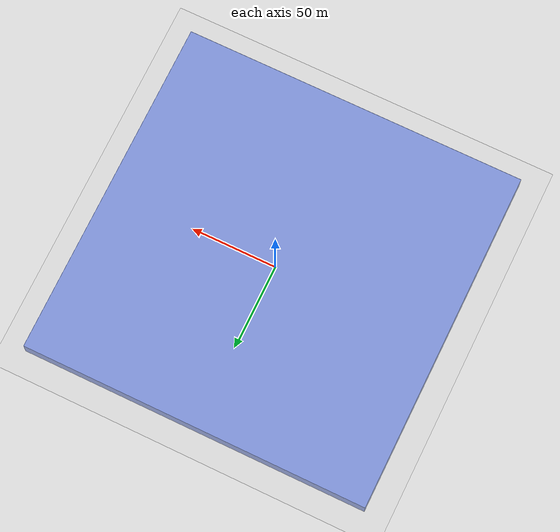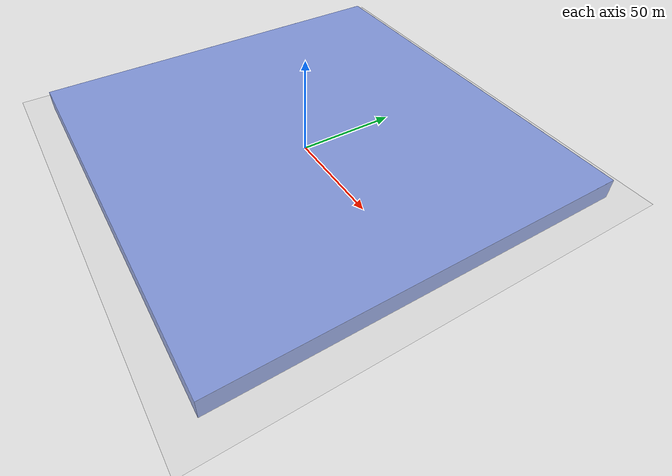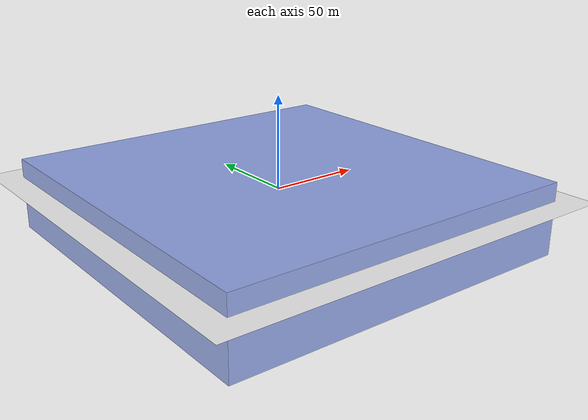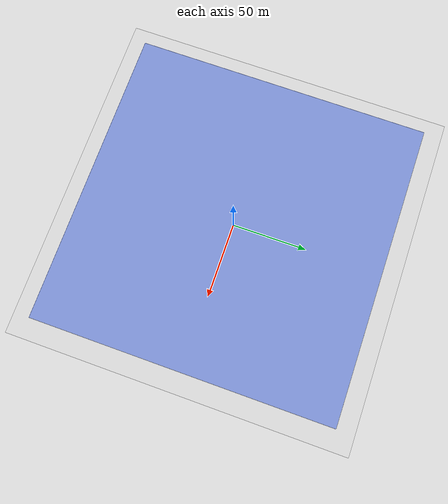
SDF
<sdf version="1.5">
 <world name="default">
  <gravity>0 0 -9.81</gravity>
  <physics name="ode" type="ode" default="true">
   <ode><solver><type>quick</type></solver></ode>
   <max_step_size>0.001</max_step_size>
   <real_time_update_rate>0.000000</real_time_update_rate>
  </physics>
  <physics name="ode_200iters" type="ode" default="true">
   <ode><solver><type>quick</type><iters>200</iters></solver></ode>
   <max_step_size>0.0001</max_step_size>
   <real_time_update_rate>0.000000</real_time_update_rate>
  </physics>
  <physics name="bullet_200iters" type="bullet" default="true">
   <bullet><solver><type>quick</type><iters>200</iters></solver></bullet>
   <max_step_size>0.0001</max_step_size>
   <real_time_update_rate>0.000000</real_time_update_rate>
  </physics>
  <scene><ambient>0.25 0.3 0.5 1</ambient><grid>true</grid></scene>
  <light type="directional" name="sun">
   <pose>0 0 100 0 0 0</pose>
   <diffuse>0.8 0.8 0.8 1</diffuse>
   <specular>0.2 0.2 0.2 1</specular>
   <attenuation>
    <range>1000</range>
    <constant>0.9</constant>
    <linear>0.01</linear>
    <quadratic>0.001</quadratic>
   </attenuation>
   <direction>-0.5 0.1 -0.9</direction>
  </light>
  <model name="ground_plane">
   <static>true</static>
   <link name="link">
    <collision name="collision">
     <geometry><plane><normal>0 0 1</normal><size>200 200</size></plane></geometry>
     <surface>
      <contact><collide_bitmask>0xffff</collide_bitmask></contact>
      <friction><ode><mu>100</mu><mu2>50</mu2></ode></friction>
     </surface>
    </collision>
    <visual name="visual">
     <cast_shadows>false</cast_shadows>
     <geometry><plane><normal>0 0 1</normal><size>200 200</size></plane></geometry>
     <material>
      <script><uri>file://media/materials/scripts/gazebo.material</uri><name>Gazebo/Grey</name></script>
     </material>
    </visual>
   </link>
  </model>
  <model name="ceiling_plane">
   <static>true</static>
   <pose>0 0 10 0 0 0</pose>
   <link name="link">
    <visual name="visual">
     <cast_shadows>false</cast_shadows>
     <geometry><box><size>200 200 .01</size></box></geometry>
     <material>
      <script>
       <uri>file://media/materials/scripts/gazebo.material</uri>
       <name>Gazebo/BlueTransparentOverlay</name>
      </script>
     </material>
    </visual>
    <visual name="visual_sideA">
     <pose>100.05 0 -20 0 0 0</pose>
     <cast_shadows>false</cast_shadows>
     <geometry><box><size>0.1 200 39.9</size></box></geometry>
     <material>
      <script><uri>file://media/materials/scripts/gazebo.material</uri><name>Gazebo/BlueTransparent</name></script>
     </material>
    </visual>
    <visual name="visual_sideB">
     <pose>-100.05 0 -20 0 0 0</pose>
     <cast_shadows>false</cast_shadows>
     <geometry><box><size>0.1 200 39.9</size></box></geometry>
     <material>
      <script><uri>file://media/materials/scripts/gazebo.material</uri><name>Gazebo/BlueTransparent</name></script>
     </material>
    </visual>
    <visual name="visual_sideC">
     <pose>0 100.05 -20 0 0 0</pose>
     <cast_shadows>false</cast_shadows>
     <geometry><box><size>200 0.1 39.9</size></box></geometry>
     <material>
      <script><uri>file://media/materials/scripts/gazebo.material</uri><name>Gazebo/BlueTransparent</name></script>
     </material>
    </visual>
    <visual name="visual_sideD">
     <pose>0 -100.05 -20 0 0 0</pose>
     <cast_shadows>false</cast_shadows>
     <geometry><box><size>200 0.1 39.9</size></box></geometry>
     <material>
      <script><uri>file://media/materials/scripts/gazebo.material</uri><name>Gazebo/BlueTransparent</name></script>
     </material>
    </visual>
   </link>
  </model>
 </world>
</sdf>
